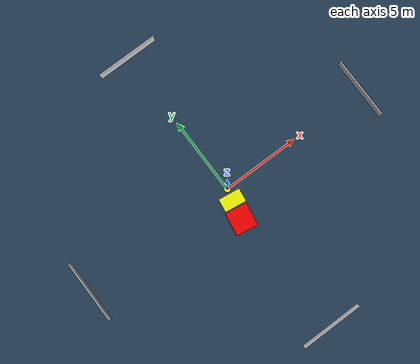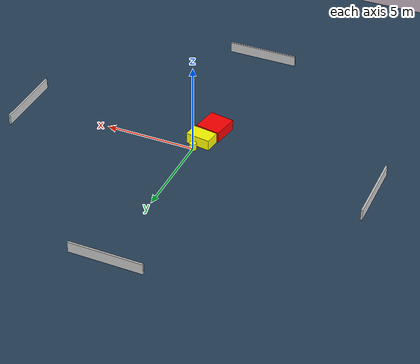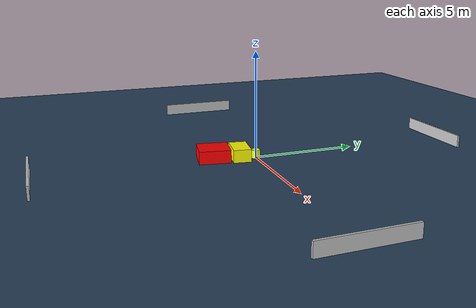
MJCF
<?xml version="1.0" ?>
<mujoco model="generated_environment">
  <option timestep="0.01" integrator="RK4" cone="elliptic"/>
  <default>
    <geom density="1"/>
  </default>
  <asset>
    <texture builtin="gradient" height="3072" name="skybox" rgb1="0.3 0.5 0.7" rgb2="0 0 0" type="skybox" width="512"/>
    <texture builtin="checker" height="300" name="groundplane" rgb1="0.2 0.3 0.4" rgb2="0.1 0.2 0.3" type="2d" width="300"/>
    <material name="groundplane" reflectance="0.2" texrepeat="5 5" texture="groundplane"/>
  </asset>
  <worldbody>
    <light dir="0 0 -1" directional="true" pos="0 0 1.5"/>
    <geom condim="3" friction="0.5 0.005 0.001" material="groundplane" name="floor" pos="0 0 0" size="0 0 0.05" type="plane"/>
    <body name="walls">
      <geom name="wall_1" condim="4" pos="-10.0 0.0 0.3" rgba="0.800000011920929 0.800000011920929 0.800000011920929 1.0" size="0.05 2.0 0.3" type="box"/>
      <geom name="wall_2" condim="4" pos="10.0 0.0 0.3" rgba="0.800000011920929 0.800000011920929 0.800000011920929 1.0" size="0.05 2.0 0.3" type="box"/>
      <geom name="wall_3" condim="4" pos="0.0 -10.0 0.3" rgba="0.800000011920929 0.800000011920929 0.800000011920929 1.0" size="2.0 0.05 0.3" type="box"/>
      <geom name="wall_4" condim="4" pos="0.0 10.0 0.3" rgba="0.800000011920929 0.800000011920929 0.800000011920929 1.0" size="2.0 0.05 0.3" type="box"/>
    </body>
    <body name="robot">
      <joint name="joint_x" type="slide" pos="0 0 0" axis="1 0 0"/>
      <joint name="joint_y" type="slide" pos="0 0 0" axis="0 1 0"/>
      <geom name="robot" type="cylinder" pos="0.0 0.0 0.2" size="0.2 0.2 0.0" mass="5.0" friction="1.0 0.005 0.0001" condim="4" rgba="1.0 1.0 0.0 1.0"/>
    </body>
    <body name="obstacle_1_movable">
      <geom name="obstacle_1_movable" condim="4" pos="-0.18155274450637102 -0.730579224784078 0.3" euler="0 0 262.05014055951796" friction="0.0 0.005 0.001" rgba="1.0 1.0 0.0 1.0" size="0.41757339582292874 0.686830793199339 0.3" type="box" mass="0.1"/>
      <joint type="free"/>
    </body>
    <body name="obstacle_2_static">
      <geom name="obstacle_2_static" condim="4" pos="-0.4275259500876209 -1.9375924337827888 0.3" euler="0 0 170.32943219018" friction="0.0 0.005 0.001" rgba="1.0 0.0 0.0 1.0" size="0.6893774371659771 0.7322190623981959 0.3" type="box"/>
    </body>
  </worldbody>
  <actuator>
    <motor name="actuator_x" joint="joint_x" gear="1" ctrlrange="-1 1"/>
    <motor name="actuator_y" joint="joint_y" gear="1" ctrlrange="-1 1"/>
  </actuator>
</mujoco>
